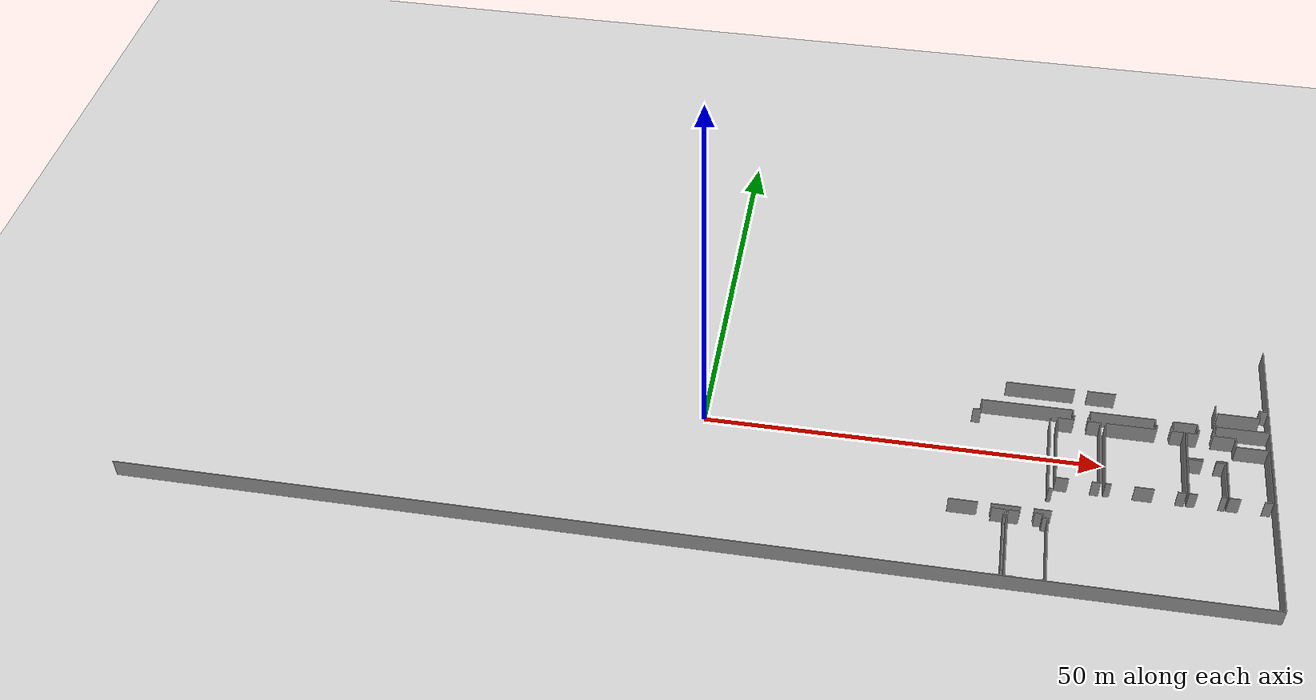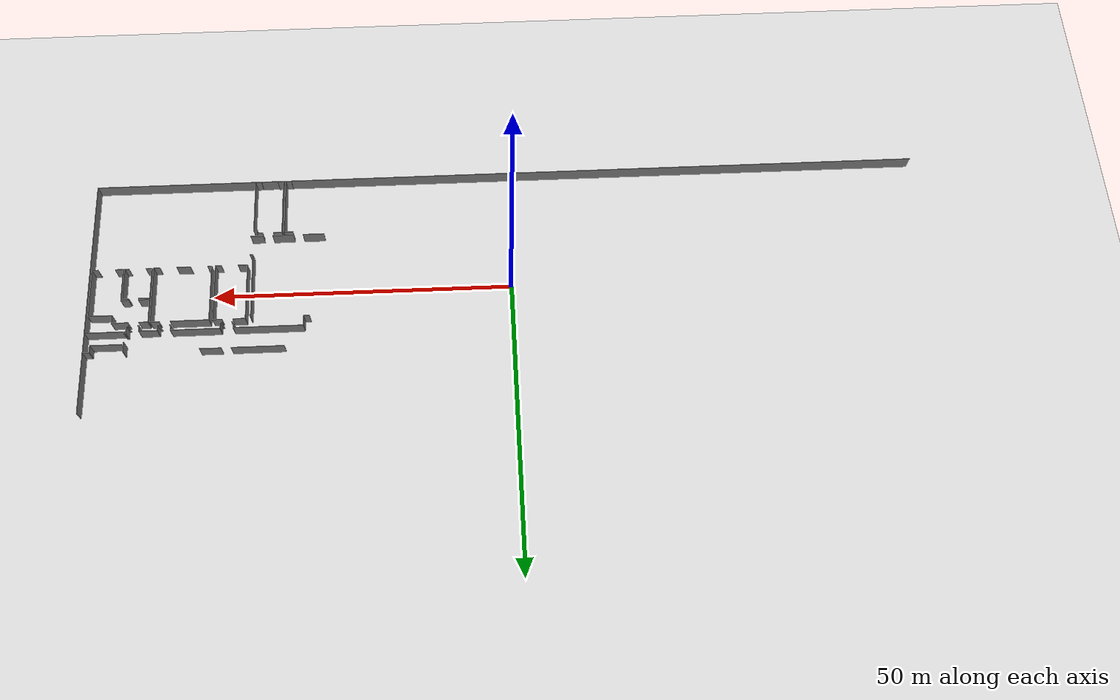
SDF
<sdf version="1.6">
 <world name="default">
  <model name="ground_plane">
   <static>1</static>
   <link name="link">
    <collision name="collision">
     <geometry><plane><normal>0 0 1</normal><size>100 100</size></plane></geometry>
     <surface><friction><ode><mu>100</mu><mu2>50</mu2></ode></friction></surface>
    </collision>
    <visual name="visual">
     <cast_shadows>0</cast_shadows>
     <geometry><plane><normal>0 0 1</normal><size>100 100</size></plane></geometry>
     <material>
      <script><uri>file://media/materials/scripts/gazebo.material</uri><name>Gazebo/Grey</name></script>
     </material>
    </visual>
   </link>
  </model>
  <model name="50055640">
   <static>1</static>
   <link name="Wall_317">
    <collision name="Wall_317_Collision">
     <geometry><box><size>11.6004619524 0.1 2.5</size></box></geometry>
     <pose>5.80023097619 0 1.25 0 0 0</pose>
    </collision>
    <visual name="Wall_317_Visual">
     <pose>5.80023097619 0 1.25 0 0 0</pose>
     <geometry><box><size>11.6004619524 0.1 2.5</size></box></geometry>
     <material>
      <script><uri>file://media/materials/scripts/gazebo.material</uri><name>Gazebo/Grey</name></script>
      <ambient>1 1 1 1</ambient>
     </material>
    </visual>
    <pose>113.734707346 -15.9891872684 0 0 0 -1.57079632679</pose>
   </link>
   <link name="Wall_318">
    <collision name="Wall_318_Collision">
     <geometry><box><size>0.491141682319 0.1 2.5</size></box></geometry>
     <pose>0.245570841159 0 1.25 0 0 0</pose>
    </collision>
    <visual name="Wall_318_Visual">
     <pose>0.245570841159 0 1.25 0 0 0</pose>
     <geometry><box><size>0.491141682319 0.1 2.5</size></box></geometry>
     <material>
      <script><uri>file://media/materials/scripts/gazebo.material</uri><name>Gazebo/Grey</name></script>
      <ambient>1 1 1 1</ambient>
     </material>
    </visual>
    <pose>113.734707346 -27.5896492208 0 0 0 0.0</pose>
   </link>
   <link name="Wall_319">
    <collision name="Wall_319_Collision">
     <geometry><box><size>2.11812782375 0.1 2.5</size></box></geometry>
     <pose>1.05906391187 0 1.25 0 0 0</pose>
    </collision>
    <visual name="Wall_319_Visual">
     <pose>1.05906391187 0 1.25 0 0 0</pose>
     <geometry><box><size>2.11812782375 0.1 2.5</size></box></geometry>
     <material>
      <script><uri>file://media/materials/scripts/gazebo.material</uri><name>Gazebo/Grey</name></script>
      <ambient>1 1 1 1</ambient>
     </material>
    </visual>
    <pose>114.225849028 -31.1251078735 0 0 0 3.14159265359</pose>
   </link>
   <link name="Wall_320">
    <collision name="Wall_320_Collision">
     <geometry><box><size>3.57936951114 0.1 2.5</size></box></geometry>
     <pose>1.78968475557 0 1.25 0 0 0</pose>
    </collision>
    <visual name="Wall_320_Visual">
     <pose>1.78968475557 0 1.25 0 0 0</pose>
     <geometry><box><size>3.57936951114 0.1 2.5</size></box></geometry>
     <material>
      <script><uri>file://media/materials/scripts/gazebo.material</uri><name>Gazebo/Grey</name></script>
      <ambient>1 1 1 1</ambient>
     </material>
    </visual>
    <pose>110.538606021 -31.1251078735 0 0 0 3.14159265359</pose>
   </link>
   <link name="Wall_321">
    <collision name="Wall_321_Collision">
     <geometry><box><size>3.57936951114 0.1 2.5</size></box></geometry>
     <pose>1.78968475557 0 1.25 0 0 0</pose>
    </collision>
    <visual name="Wall_321_Visual">
     <pose>1.78968475557 0 1.25 0 0 0</pose>
     <geometry><box><size>3.57936951114 0.1 2.5</size></box></geometry>
     <material>
      <script><uri>file://media/materials/scripts/gazebo.material</uri><name>Gazebo/Grey</name></script>
      <ambient>1 1 1 1</ambient>
     </material>
    </visual>
    <pose>105.385425656 -31.1251078735 0 0 0 3.14159265359</pose>
   </link>
   <link name="Wall_323">
    <collision name="Wall_323_Collision">
     <geometry><box><size>9.94542870196 0.1 2.5</size></box></geometry>
     <pose>4.97271435098 0 1.25 0 0 0</pose>
    </collision>
    <visual name="Wall_323_Visual">
     <pose>4.97271435098 0 1.25 0 0 0</pose>
     <geometry><box><size>9.94542870196 0.1 2.5</size></box></geometry>
     <material>
      <script><uri>file://media/materials/scripts/gazebo.material</uri><name>Gazebo/Grey</name></script>
      <ambient>1 1 1 1</ambient>
     </material>
    </visual>
    <pose>108.957815118 -41.6880806132 0 0 0 1.57079632679</pose>
   </link>
   <link name="Wall_324">
    <collision name="Wall_324_Collision">
     <geometry><box><size>1.46441443728 0.1 2.5</size></box></geometry>
     <pose>0.732207218641 0 1.25 0 0 0</pose>
    </collision>
    <visual name="Wall_324_Visual">
     <pose>0.732207218641 0 1.25 0 0 0</pose>
     <geometry><box><size>1.46441443728 0.1 2.5</size></box></geometry>
     <material>
      <script><uri>file://media/materials/scripts/gazebo.material</uri><name>Gazebo/Grey</name></script>
      <ambient>1 1 1 1</ambient>
     </material>
    </visual>
    <pose>108.957815118 -31.7426519113 0 0 0 0.0</pose>
   </link>
   <link name="Wall_325">
    <collision name="Wall_325_Collision">
     <geometry><box><size>0.954363165643 0.1 2.5</size></box></geometry>
     <pose>0.477181582821 0 1.25 0 0 0</pose>
    </collision>
    <visual name="Wall_325_Visual">
     <pose>0.477181582821 0 1.25 0 0 0</pose>
     <geometry><box><size>0.954363165643 0.1 2.5</size></box></geometry>
     <material>
      <script><uri>file://media/materials/scripts/gazebo.material</uri><name>Gazebo/Grey</name></script>
      <ambient>1 1 1 1</ambient>
     </material>
    </visual>
    <pose>112.195289101 -31.7426519113 0 0 0 0.0</pose>
   </link>
   <link name="Wall_326">
    <collision name="Wall_326_Collision">
     <geometry><box><size>0.580867049089 0.1 2.5</size></box></geometry>
     <pose>0.290433524544 0 1.25 0 0 0</pose>
    </collision>
    <visual name="Wall_326_Visual">
     <pose>0.290433524544 0 1.25 0 0 0</pose>
     <geometry><box><size>0.580867049089 0.1 2.5</size></box></geometry>
     <material>
      <script><uri>file://media/materials/scripts/gazebo.material</uri><name>Gazebo/Grey</name></script>
      <ambient>1 1 1 1</ambient>
     </material>
    </visual>
    <pose>113.149652267 -31.7426519113 0 0 0 -1.57079632679</pose>
   </link>
   <link name="Wall_327">
    <collision name="Wall_327_Collision">
     <geometry><box><size>0.596476978527 0.1 2.5</size></box></geometry>
     <pose>0.298238489263 0 1.25 0 0 0</pose>
    </collision>
    <visual name="Wall_327_Visual">
     <pose>0.298238489263 0 1.25 0 0 0</pose>
     <geometry><box><size>0.596476978527 0.1 2.5</size></box></geometry>
     <material>
      <script><uri>file://media/materials/scripts/gazebo.material</uri><name>Gazebo/Grey</name></script>
      <ambient>1 1 1 1</ambient>
     </material>
    </visual>
    <pose>113.149652267 -32.3235189604 0 0 0 0.0</pose>
   </link>
   <link name="Wall_328">
    <collision name="Wall_328_Collision">
     <geometry><box><size>9.36684603279 0.1 2.5</size></box></geometry>
     <pose>4.6834230164 0 1.25 0 0 0</pose>
    </collision>
    <visual name="Wall_328_Visual">
     <pose>4.6834230164 0 1.25 0 0 0</pose>
     <geometry><box><size>9.36684603279 0.1 2.5</size></box></geometry>
     <material>
      <script><uri>file://media/materials/scripts/gazebo.material</uri><name>Gazebo/Grey</name></script>
      <ambient>1 1 1 1</ambient>
     </material>
    </visual>
    <pose>113.746129245 -32.3235189604 0 0 0 -1.57079632679</pose>
   </link>
   <link name="Wall_329">
    <collision name="Wall_329_Collision">
     <geometry><box><size>1.00766536372 0.1 2.5</size></box></geometry>
     <pose>0.503832681862 0 1.25 0 0 0</pose>
    </collision>
    <visual name="Wall_329_Visual">
     <pose>0.503832681862 0 1.25 0 0 0</pose>
     <geometry><box><size>1.00766536372 0.1 2.5</size></box></geometry>
     <material>
      <script><uri>file://media/materials/scripts/gazebo.material</uri><name>Gazebo/Grey</name></script>
      <ambient>1 1 1 1</ambient>
     </material>
    </visual>
    <pose>113.746129245 -41.6903649931 0 0 0 3.14159265359</pose>
   </link>
   <link name="Wall_330">
    <collision name="Wall_330_Collision">
     <geometry><box><size>0.965153218659 0.1 2.5</size></box></geometry>
     <pose>0.482576609329 0 1.25 0 0 0</pose>
    </collision>
    <visual name="Wall_330_Visual">
     <pose>0.482576609329 0 1.25 0 0 0</pose>
     <geometry><box><size>0.965153218659 0.1 2.5</size></box></geometry>
     <material>
      <script><uri>file://media/materials/scripts/gazebo.material</uri><name>Gazebo/Grey</name></script>
      <ambient>1 1 1 1</ambient>
     </material>
    </visual>
    <pose>109.922965633 -41.6903649931 0 0 0 3.1392257941</pose>
   </link>
   <link name="Wall_333">
    <collision name="Wall_333_Collision">
     <geometry><box><size>1.49753794609 0.1 2.5</size></box></geometry>
     <pose>0.748768973044 0 1.25 0 0 0</pose>
    </collision>
    <visual name="Wall_333_Visual">
     <pose>0.748768973044 0 1.25 0 0 0</pose>
     <geometry><box><size>1.49753794609 0.1 2.5</size></box></geometry>
     <material>
      <script><uri>file://media/materials/scripts/gazebo.material</uri><name>Gazebo/Grey</name></script>
      <ambient>1 1 1 1</ambient>
     </material>
    </visual>
    <pose>107.066856186 -31.7278034418 0 0 0 0.0</pose>
   </link>
   <link name="Wall_334">
    <collision name="Wall_334_Collision">
     <geometry><box><size>9.9666226712 0.1 2.5</size></box></geometry>
     <pose>4.9833113356 0 1.25 0 0 0</pose>
    </collision>
    <visual name="Wall_334_Visual">
     <pose>4.9833113356 0 1.25 0 0 0</pose>
     <geometry><box><size>9.9666226712 0.1 2.5</size></box></geometry>
     <material>
      <script><uri>file://media/materials/scripts/gazebo.material</uri><name>Gazebo/Grey</name></script>
      <ambient>1 1 1 1</ambient>
     </material>
    </visual>
    <pose>108.564394132 -31.7278034418 0 0 0 -1.57079632679</pose>
   </link>
   <link name="Wall_335">
    <collision name="Wall_335_Collision">
     <geometry><box><size>0.96223158536 0.1 2.5</size></box></geometry>
     <pose>0.48111579268 0 1.25 0 0 0</pose>
    </collision>
    <visual name="Wall_335_Visual">
     <pose>0.48111579268 0 1.25 0 0 0</pose>
     <geometry><box><size>0.96223158536 0.1 2.5</size></box></geometry>
     <material>
      <script><uri>file://media/materials/scripts/gazebo.material</uri><name>Gazebo/Grey</name></script>
      <ambient>1 1 1 1</ambient>
     </material>
    </visual>
    <pose>108.564394132 -41.694426113 0 0 0 3.14159265359</pose>
   </link>
   <link name="Wall_371">
    <collision name="Wall_371_Collision">
     <geometry><box><size>8.71617848622 0.1 2.5</size></box></geometry>
     <pose>4.35808924311 0 1.25 0 0 0</pose>
    </collision>
    <visual name="Wall_371_Visual">
     <pose>4.35808924311 0 1.25 0 0 0</pose>
     <geometry><box><size>8.71617848622 0.1 2.5</size></box></geometry>
     <material>
      <script><uri>file://media/materials/scripts/gazebo.material</uri><name>Gazebo/Grey</name></script>
      <ambient>1 1 1 1</ambient>
     </material>
    </visual>
    <pose>108.005990152 -10.5616274938 0 0 0 0.0</pose>
   </link>
   <link name="Wall_372">
    <collision name="Wall_372_Collision">
     <geometry><box><size>3.55601807198 0.1 2.5</size></box></geometry>
     <pose>1.77800903599 0 1.25 0 0 0</pose>
    </collision>
    <visual name="Wall_372_Visual">
     <pose>1.77800903599 0 1.25 0 0 0</pose>
     <geometry><box><size>3.55601807198 0.1 2.5</size></box></geometry>
     <material>
      <script><uri>file://media/materials/scripts/gazebo.material</uri><name>Gazebo/Grey</name></script>
      <ambient>1 1 1 1</ambient>
     </material>
    </visual>
    <pose>118.311081781 -10.5616274938 0 0 0 0.0</pose>
   </link>
   <link name="Wall_376">
    <collision name="Wall_376_Collision">
     <geometry><box><size>1.35032235139 0.1 2.5</size></box></geometry>
     <pose>0.675161175694 0 1.25 0 0 0</pose>
    </collision>
    <visual name="Wall_376_Visual">
     <pose>0.675161175694 0 1.25 0 0 0</pose>
     <geometry><box><size>1.35032235139 0.1 2.5</size></box></geometry>
     <material>
      <script><uri>file://media/materials/scripts/gazebo.material</uri><name>Gazebo/Grey</name></script>
      <ambient>1 1 1 1</ambient>
     </material>
    </visual>
    <pose>134.087263313 -13.7808264379 0 0 0 -1.57079632679</pose>
   </link>
   <link name="Wall_377">
    <collision name="Wall_377_Collision">
     <geometry><box><size>0.304583989035 0.1 2.5</size></box></geometry>
     <pose>0.152291994517 0 1.25 0 0 0</pose>
    </collision>
    <visual name="Wall_377_Visual">
     <pose>0.152291994517 0 1.25 0 0 0</pose>
     <geometry><box><size>0.304583989035 0.1 2.5</size></box></geometry>
     <material>
      <script><uri>file://media/materials/scripts/gazebo.material</uri><name>Gazebo/Grey</name></script>
      <ambient>1 1 1 1</ambient>
     </material>
    </visual>
    <pose>134.087263313 -15.1311487893 0 0 0 3.14159265359</pose>
   </link>
   <link name="Wall_378">
    <collision name="Wall_378_Collision">
     <geometry><box><size>0.232245291639 0.1 2.5</size></box></geometry>
     <pose>0.11612264582 0 1.25 0 0 0</pose>
    </collision>
    <visual name="Wall_378_Visual">
     <pose>0.11612264582 0 1.25 0 0 0</pose>
     <geometry><box><size>0.232245291639 0.1 2.5</size></box></geometry>
     <material>
      <script><uri>file://media/materials/scripts/gazebo.material</uri><name>Gazebo/Grey</name></script>
      <ambient>1 1 1 1</ambient>
     </material>
    </visual>
    <pose>132.198842581 -15.1311487893 0 0 0 3.14159265359</pose>
   </link>
   <link name="Wall_379">
    <collision name="Wall_379_Collision">
     <geometry><box><size>0.977714604802 0.1 2.5</size></box></geometry>
     <pose>0.488857302401 0 1.25 0 0 0</pose>
    </collision>
    <visual name="Wall_379_Visual">
     <pose>0.488857302401 0 1.25 0 0 0</pose>
     <geometry><box><size>0.977714604802 0.1 2.5</size></box></geometry>
     <material>
      <script><uri>file://media/materials/scripts/gazebo.material</uri><name>Gazebo/Grey</name></script>
      <ambient>1 1 1 1</ambient>
     </material>
    </visual>
    <pose>131.966597289 -15.1311487893 0 0 0 1.57079632679</pose>
   </link>
   <link name="Wall_380">
    <collision name="Wall_380_Collision">
     <geometry><box><size>3.01030509163 0.1 2.5</size></box></geometry>
     <pose>1.50515254581 0 1.25 0 0 0</pose>
    </collision>
    <visual name="Wall_380_Visual">
     <pose>1.50515254581 0 1.25 0 0 0</pose>
     <geometry><box><size>3.01030509163 0.1 2.5</size></box></geometry>
     <material>
      <script><uri>file://media/materials/scripts/gazebo.material</uri><name>Gazebo/Grey</name></script>
      <ambient>1 1 1 1</ambient>
     </material>
    </visual>
    <pose>131.966597289 -14.1534341845 0 0 0 3.14159265359</pose>
   </link>
   <link name="Wall_381">
    <collision name="Wall_381_Collision">
     <geometry><box><size>1.00131986395 0.1 2.5</size></box></geometry>
     <pose>0.500659931976 0 1.25 0 0 0</pose>
    </collision>
    <visual name="Wall_381_Visual">
     <pose>0.500659931976 0 1.25 0 0 0</pose>
     <geometry><box><size>1.00131986395 0.1 2.5</size></box></geometry>
     <material>
      <script><uri>file://media/materials/scripts/gazebo.material</uri><name>Gazebo/Grey</name></script>
      <ambient>1 1 1 1</ambient>
     </material>
    </visual>
    <pose>128.956292198 -14.1534341845 0 0 0 -1.57079632679</pose>
   </link>
   <link name="Wall_382">
    <collision name="Wall_382_Collision">
     <geometry><box><size>0.327427788213 0.1 2.5</size></box></geometry>
     <pose>0.163713894106 0 1.25 0 0 0</pose>
    </collision>
    <visual name="Wall_382_Visual">
     <pose>0.163713894106 0 1.25 0 0 0</pose>
     <geometry><box><size>0.327427788213 0.1 2.5</size></box></geometry>
     <material>
      <script><uri>file://media/materials/scripts/gazebo.material</uri><name>Gazebo/Grey</name></script>
      <ambient>1 1 1 1</ambient>
     </material>
    </visual>
    <pose>128.956292198 -15.1547540484 0 0 0 3.14159265359</pose>
   </link>
   <link name="Wall_383">
    <collision name="Wall_383_Collision">
     <geometry><box><size>0.242398091274 0.1 2.5</size></box></geometry>
     <pose>0.121199045637 0 1.25 0 0 0</pose>
    </collision>
    <visual name="Wall_383_Visual">
     <pose>0.121199045637 0 1.25 0 0 0</pose>
     <geometry><box><size>0.242398091274 0.1 2.5</size></box></geometry>
     <material>
      <script><uri>file://media/materials/scripts/gazebo.material</uri><name>Gazebo/Grey</name></script>
      <ambient>1 1 1 1</ambient>
     </material>
    </visual>
    <pose>127.065333266 -15.1547540484 0 0 0 3.14159265359</pose>
   </link>
   <link name="Wall_384">
    <collision name="Wall_384_Collision">
     <geometry><box><size>1.02898624296 0.1 2.5</size></box></geometry>
     <pose>0.514493121478 0 1.25 0 0 0</pose>
    </collision>
    <visual name="Wall_384_Visual">
     <pose>0.514493121478 0 1.25 0 0 0</pose>
     <geometry><box><size>1.02898624296 0.1 2.5</size></box></geometry>
     <material>
      <script><uri>file://media/materials/scripts/gazebo.material</uri><name>Gazebo/Grey</name></script>
      <ambient>1 1 1 1</ambient>
     </material>
    </visual>
    <pose>126.822935174 -15.1547540484 0 0 0 1.57079632679</pose>
   </link>
   <link name="Wall_385">
    <collision name="Wall_385_Collision">
     <geometry><box><size>8.15523630641 0.1 2.5</size></box></geometry>
     <pose>4.07761815321 0 1.25 0 0 0</pose>
    </collision>
    <visual name="Wall_385_Visual">
     <pose>4.07761815321 0 1.25 0 0 0</pose>
     <geometry><box><size>8.15523630641 0.1 2.5</size></box></geometry>
     <material>
      <script><uri>file://media/materials/scripts/gazebo.material</uri><name>Gazebo/Grey</name></script>
      <ambient>1 1 1 1</ambient>
     </material>
    </visual>
    <pose>126.822935174 -14.1257678055 0 0 0 3.14159265359</pose>
   </link>
   <link name="Wall_386">
    <collision name="Wall_386_Collision">
     <geometry><box><size>1.02632113305 0.1 2.5</size></box></geometry>
     <pose>0.513160566526 0 1.25 0 0 0</pose>
    </collision>
    <visual name="Wall_386_Visual">
     <pose>0.513160566526 0 1.25 0 0 0</pose>
     <geometry><box><size>1.02632113305 0.1 2.5</size></box></geometry>
     <material>
      <script><uri>file://media/materials/scripts/gazebo.material</uri><name>Gazebo/Grey</name></script>
      <ambient>1 1 1 1</ambient>
     </material>
    </visual>
    <pose>118.667698868 -14.1257678055 0 0 0 -1.57079632679</pose>
   </link>
   <link name="Wall_387">
    <collision name="Wall_387_Collision">
     <geometry><box><size>0.309660388852 0.1 2.5</size></box></geometry>
     <pose>0.154830194426 0 1.25 0 0 0</pose>
    </collision>
    <visual name="Wall_387_Visual">
     <pose>0.154830194426 0 1.25 0 0 0</pose>
     <geometry><box><size>0.309660388852 0.1 2.5</size></box></geometry>
     <material>
      <script><uri>file://media/materials/scripts/gazebo.material</uri><name>Gazebo/Grey</name></script>
      <ambient>1 1 1 1</ambient>
     </material>
    </visual>
    <pose>118.667698868 -15.1520889385 0 0 0 3.14159265359</pose>
   </link>
   <link name="Wall_388">
    <collision name="Wall_388_Collision">
     <geometry><box><size>0.262703690543 0.1 2.5</size></box></geometry>
     <pose>0.131351845271 0 1.25 0 0 0</pose>
    </collision>
    <visual name="Wall_388_Visual">
     <pose>0.131351845271 0 1.25 0 0 0</pose>
     <geometry><box><size>0.262703690543 0.1 2.5</size></box></geometry>
     <material>
      <script><uri>file://media/materials/scripts/gazebo.material</uri><name>Gazebo/Grey</name></script>
      <ambient>1 1 1 1</ambient>
     </material>
    </visual>
    <pose>116.780547236 -15.1520889385 0 0 0 3.14159265359</pose>
   </link>
   <link name="Wall_389">
    <collision name="Wall_389_Collision">
     <geometry><box><size>1.00411188385 0.1 2.5</size></box></geometry>
     <pose>0.502055941926 0 1.25 0 0 0</pose>
    </collision>
    <visual name="Wall_389_Visual">
     <pose>0.502055941926 0 1.25 0 0 0</pose>
     <geometry><box><size>1.00411188385 0.1 2.5</size></box></geometry>
     <material>
      <script><uri>file://media/materials/scripts/gazebo.material</uri><name>Gazebo/Grey</name></script>
      <ambient>1 1 1 1</ambient>
     </material>
    </visual>
    <pose>116.517843545 -15.1520889385 0 0 0 1.57079632679</pose>
   </link>
   <link name="Wall_390">
    <collision name="Wall_390_Collision">
     <geometry><box><size>11.5151784355 0.1 2.5</size></box></geometry>
     <pose>5.75758921773 0 1.25 0 0 0</pose>
    </collision>
    <visual name="Wall_390_Visual">
     <pose>5.75758921773 0 1.25 0 0 0</pose>
     <geometry><box><size>11.5151784355 0.1 2.5</size></box></geometry>
     <material>
      <script><uri>file://media/materials/scripts/gazebo.material</uri><name>Gazebo/Grey</name></script>
      <ambient>1 1 1 1</ambient>
     </material>
    </visual>
    <pose>116.517843545 -14.1479770547 0 0 0 3.14159265359</pose>
   </link>
   <link name="Wall_391">
    <collision name="Wall_391_Collision">
     <geometry><box><size>1.73244834763 0.1 2.5</size></box></geometry>
     <pose>0.866224173816 0 1.25 0 0 0</pose>
    </collision>
    <visual name="Wall_391_Visual">
     <pose>0.866224173816 0 1.25 0 0 0</pose>
     <geometry><box><size>1.73244834763 0.1 2.5</size></box></geometry>
     <material>
      <script><uri>file://media/materials/scripts/gazebo.material</uri><name>Gazebo/Grey</name></script>
      <ambient>1 1 1 1</ambient>
     </material>
    </visual>
    <pose>105.00266511 -14.1479770547 0 0 0 -1.57079632679</pose>
   </link>
   <link name="Wall_392">
    <collision name="Wall_392_Collision">
     <geometry><box><size>1.00791918371 0.1 2.5</size></box></geometry>
     <pose>0.503959591857 0 1.25 0 0 0</pose>
    </collision>
    <visual name="Wall_392_Visual">
     <pose>0.503959591857 0 1.25 0 0 0</pose>
     <geometry><box><size>1.00791918371 0.1 2.5</size></box></geometry>
     <material>
      <script><uri>file://media/materials/scripts/gazebo.material</uri><name>Gazebo/Grey</name></script>
      <ambient>1 1 1 1</ambient>
     </material>
    </visual>
    <pose>105.00266511 -15.8804254023 0 0 0 3.14159265359</pose>
   </link>
   <link name="Wall_471">
    <collision name="Wall_471_Collision">
     <geometry><box><size>0.317148078583 0.1 2.5</size></box></geometry>
     <pose>0.158574039291 0 1.25 0 0 0</pose>
    </collision>
    <visual name="Wall_471_Visual">
     <pose>0.158574039291 0 1.25 0 0 0</pose>
     <geometry><box><size>0.317148078583 0.1 2.5</size></box></geometry>
     <material>
      <script><uri>file://media/materials/scripts/gazebo.material</uri><name>Gazebo/Grey</name></script>
      <ambient>1 1 1 1</ambient>
     </material>
    </visual>
    <pose>134.337276004 -14.1440428448 0 0 0 1.57079632679</pose>
   </link>
   <link name="Wall_472">
    <collision name="Wall_472_Collision">
     <geometry><box><size>1.73257525763 0.1 2.5</size></box></geometry>
     <pose>0.866287628814 0 1.25 0 0 0</pose>
    </collision>
    <visual name="Wall_472_Visual">
     <pose>0.866287628814 0 1.25 0 0 0</pose>
     <geometry><box><size>1.73257525763 0.1 2.5</size></box></geometry>
     <material>
      <script><uri>file://media/materials/scripts/gazebo.material</uri><name>Gazebo/Grey</name></script>
      <ambient>1 1 1 1</ambient>
     </material>
    </visual>
    <pose>134.337276004 -12.2938220214 0 0 0 1.57079632679</pose>
   </link>
   <link name="Wall_475">
    <collision name="Wall_475_Collision">
     <geometry><box><size>5.18173511346 0.1 2.5</size></box></geometry>
     <pose>2.59086755673 0 1.25 0 0 0</pose>
    </collision>
    <visual name="Wall_475_Visual">
     <pose>2.59086755673 0 1.25 0 0 0</pose>
     <geometry><box><size>5.18173511346 0.1 2.5</size></box></geometry>
     <material>
      <script><uri>file://media/materials/scripts/gazebo.material</uri><name>Gazebo/Grey</name></script>
      <ambient>1 1 1 1</ambient>
     </material>
    </visual>
    <pose>134.587288695 -11.8476064775 0 0 0 0.0</pose>
   </link>
   <link name="Wall_476">
    <collision name="Wall_476_Collision">
     <geometry><box><size>1.2666886644 0.1 2.5</size></box></geometry>
     <pose>0.6333443322 0 1.25 0 0 0</pose>
    </collision>
    <visual name="Wall_476_Visual">
     <pose>0.6333443322 0 1.25 0 0 0</pose>
     <geometry><box><size>1.2666886644 0.1 2.5</size></box></geometry>
     <material>
      <script><uri>file://media/materials/scripts/gazebo.material</uri><name>Gazebo/Grey</name></script>
      <ambient>1 1 1 1</ambient>
     </material>
    </visual>
    <pose>139.769023808 -11.8476064775 0 0 0 1.57079632679</pose>
   </link>
   <link name="Wall_477">
    <collision name="Wall_477_Collision">
     <geometry><box><size>1.11300065993 0.1 2.5</size></box></geometry>
     <pose>0.556500329966 0 1.25 0 0 0</pose>
    </collision>
    <visual name="Wall_477_Visual">
     <pose>0.556500329966 0 1.25 0 0 0</pose>
     <geometry><box><size>1.11300065993 0.1 2.5</size></box></geometry>
     <material>
      <script><uri>file://media/materials/scripts/gazebo.material</uri><name>Gazebo/Grey</name></script>
      <ambient>1 1 1 1</ambient>
     </material>
    </visual>
    <pose>139.769023808 -10.5809178131 0 0 0 0.0</pose>
   </link>
   <link name="Wall_478">
    <collision name="Wall_478_Collision">
     <geometry><box><size>6.5447967033 0.1 2.5</size></box></geometry>
     <pose>3.27239835165 0 1.25 0 0 0</pose>
    </collision>
    <visual name="Wall_478_Visual">
     <pose>3.27239835165 0 1.25 0 0 0</pose>
     <geometry><box><size>6.5447967033 0.1 2.5</size></box></geometry>
     <material>
      <script><uri>file://media/materials/scripts/gazebo.material</uri><name>Gazebo/Grey</name></script>
      <ambient>1 1 1 1</ambient>
     </material>
    </visual>
    <pose>140.882024468 -14.1189146657 0 0 0 -3.13775323092</pose>
   </link>
   <link name="Wall_479">
    <collision name="Wall_479_Collision">
     <geometry><box><size>4.17356210975 0.1 2.5</size></box></geometry>
     <pose>2.08678105488 0 1.25 0 0 0</pose>
    </collision>
    <visual name="Wall_479_Visual">
     <pose>2.08678105488 0 1.25 0 0 0</pose>
     <geometry><box><size>4.17356210975 0.1 2.5</size></box></geometry>
     <material>
      <script><uri>file://media/materials/scripts/gazebo.material</uri><name>Gazebo/Grey</name></script>
      <ambient>1 1 1 1</ambient>
     </material>
    </visual>
    <pose>130.570587339 -19.9293618965 0 0 0 1.57079632679</pose>
   </link>
   <link name="Wall_480">
    <collision name="Wall_480_Collision">
     <geometry><box><size>1.50895984568 0.1 2.5</size></box></geometry>
     <pose>0.754479922839 0 1.25 0 0 0</pose>
    </collision>
    <visual name="Wall_480_Visual">
     <pose>0.754479922839 0 1.25 0 0 0</pose>
     <geometry><box><size>1.50895984568 0.1 2.5</size></box></geometry>
     <material>
      <script><uri>file://media/materials/scripts/gazebo.material</uri><name>Gazebo/Grey</name></script>
      <ambient>1 1 1 1</ambient>
     </material>
    </visual>
    <pose>130.570587339 -15.7557997868 0 0 0 0.0</pose>
   </link>
   <link name="Wall_481">
    <collision name="Wall_481_Collision">
     <geometry><box><size>2.74379410122 0.1 2.5</size></box></geometry>
     <pose>1.37189705061 0 1.25 0 0 0</pose>
    </collision>
    <visual name="Wall_481_Visual">
     <pose>1.37189705061 0 1.25 0 0 0</pose>
     <geometry><box><size>2.74379410122 0.1 2.5</size></box></geometry>
     <material>
      <script><uri>file://media/materials/scripts/gazebo.material</uri><name>Gazebo/Grey</name></script>
      <ambient>1 1 1 1</ambient>
     </material>
    </visual>
    <pose>133.841057922 -15.7557997868 0 0 0 0.0</pose>
   </link>
   <link name="Wall_482">
    <collision name="Wall_482_Collision">
     <geometry><box><size>1.4278643586 0.1 2.5</size></box></geometry>
     <pose>0.713932179298 0 1.25 0 0 0</pose>
    </collision>
    <visual name="Wall_482_Visual">
     <pose>0.713932179298 0 1.25 0 0 0</pose>
     <geometry><box><size>1.4278643586 0.1 2.5</size></box></geometry>
     <material>
      <script><uri>file://media/materials/scripts/gazebo.material</uri><name>Gazebo/Grey</name></script>
      <ambient>1 1 1 1</ambient>
     </material>
    </visual>
    <pose>136.584852023 -15.7557997868 0 0 0 -1.57079632679</pose>
   </link>
   <link name="Wall_483">
    <collision name="Wall_483_Collision">
     <geometry><box><size>3.95578455759 0.1 2.5</size></box></geometry>
     <pose>1.9778922788 0 1.25 0 0 0</pose>
    </collision>
    <visual name="Wall_483_Visual">
     <pose>1.9778922788 0 1.25 0 0 0</pose>
     <geometry><box><size>3.95578455759 0.1 2.5</size></box></geometry>
     <material>
      <script><uri>file://media/materials/scripts/gazebo.material</uri><name>Gazebo/Grey</name></script>
      <ambient>1 1 1 1</ambient>
     </material>
    </visual>
    <pose>136.584852023 -17.1836641454 0 0 0 0.0</pose>
   </link>
   <link name="Wall_484">
    <collision name="Wall_484_Collision">
     <geometry><box><size>8.51426468349 0.1 2.5</size></box></geometry>
     <pose>4.25713234174 0 1.25 0 0 0</pose>
    </collision>
    <visual name="Wall_484_Visual">
     <pose>4.25713234174 0 1.25 0 0 0</pose>
     <geometry><box><size>8.51426468349 0.1 2.5</size></box></geometry>
     <material>
      <script><uri>file://media/materials/scripts/gazebo.material</uri><name>Gazebo/Grey</name></script>
      <ambient>1 1 1 1</ambient>
     </material>
    </visual>
    <pose>140.540636581 -17.1836641454 0 0 0 -1.57079632679</pose>
   </link>
   <link name="Wall_485">
    <collision name="Wall_485_Collision">
     <geometry><box><size>1.02035636327 0.1 2.5</size></box></geometry>
     <pose>0.510178181634 0 1.25 0 0 0</pose>
    </collision>
    <visual name="Wall_485_Visual">
     <pose>0.510178181634 0 1.25 0 0 0</pose>
     <geometry><box><size>1.02035636327 0.1 2.5</size></box></geometry>
     <material>
      <script><uri>file://media/materials/scripts/gazebo.material</uri><name>Gazebo/Grey</name></script>
      <ambient>1 1 1 1</ambient>
     </material>
    </visual>
    <pose>140.540636581 -25.6979288289 0 0 0 3.14159265359</pose>
   </link>
   <link name="Wall_486">
    <collision name="Wall_486_Collision">
     <geometry><box><size>1.37824255038 0.1 2.5</size></box></geometry>
     <pose>0.689121275192 0 1.25 0 0 0</pose>
    </collision>
    <visual name="Wall_486_Visual">
     <pose>0.689121275192 0 1.25 0 0 0</pose>
     <geometry><box><size>1.37824255038 0.1 2.5</size></box></geometry>
     <material>
      <script><uri>file://media/materials/scripts/gazebo.material</uri><name>Gazebo/Grey</name></script>
      <ambient>1 1 1 1</ambient>
     </material>
    </visual>
    <pose>136.719376618 -25.6979288289 0 0 0 3.14159265359</pose>
   </link>
   <link name="Wall_487">
    <collision name="Wall_487_Collision">
     <geometry><box><size>5.78316158181 0.1 2.5</size></box></geometry>
     <pose>2.8915807909 0 1.25 0 0 0</pose>
    </collision>
    <visual name="Wall_487_Visual">
     <pose>2.8915807909 0 1.25 0 0 0</pose>
     <geometry><box><size>5.78316158181 0.1 2.5</size></box></geometry>
     <material>
      <script><uri>file://media/materials/scripts/gazebo.material</uri><name>Gazebo/Grey</name></script>
      <ambient>1 1 1 1</ambient>
     </material>
    </visual>
    <pose>135.341134068 -25.6979288289 0 0 0 1.57079632679</pose>
   </link>
   <link name="Wall_488">
    <collision name="Wall_488_Collision">
     <geometry><box><size>1.32113305244 0.1 2.5</size></box></geometry>
     <pose>0.66056652622 0 1.25 0 0 0</pose>
    </collision>
    <visual name="Wall_488_Visual">
     <pose>0.66056652622 0 1.25 0 0 0</pose>
     <geometry><box><size>1.32113305244 0.1 2.5</size></box></geometry>
     <material>
      <script><uri>file://media/materials/scripts/gazebo.material</uri><name>Gazebo/Grey</name></script>
      <ambient>1 1 1 1</ambient>
     </material>
    </visual>
    <pose>135.341134068 -19.9147672471 0 0 0 3.14159265359</pose>
   </link>
   <link name="Wall_489">
    <collision name="Wall_489_Collision">
     <geometry><box><size>1.87324838755 0.1 2.5</size></box></geometry>
     <pose>0.936624193776 0 1.25 0 0 0</pose>
    </collision>
    <visual name="Wall_489_Visual">
     <pose>0.936624193776 0 1.25 0 0 0</pose>
     <geometry><box><size>1.87324838755 0.1 2.5</size></box></geometry>
     <material>
      <script><uri>file://media/materials/scripts/gazebo.material</uri><name>Gazebo/Grey</name></script>
      <ambient>1 1 1 1</ambient>
     </material>
    </visual>
    <pose>132.443778872 -19.9147672471 0 0 0 -3.13380148333</pose>
   </link>
   <link name="Wall_490">
    <collision name="Wall_490_Collision">
     <geometry><box><size>5.58086704909 0.1 2.5</size></box></geometry>
     <pose>2.79043352454 0 1.25 0 0 0</pose>
    </collision>
    <visual name="Wall_490_Visual">
     <pose>2.79043352454 0 1.25 0 0 0</pose>
     <geometry><box><size>5.58086704909 0.1 2.5</size></box></geometry>
     <material>
      <script><uri>file://media/materials/scripts/gazebo.material</uri><name>Gazebo/Grey</name></script>
      <ambient>1 1 1 1</ambient>
     </material>
    </visual>
    <pose>130.55789634 -25.7291486878 0 0 0 1.57079632679</pose>
   </link>
   <link name="Wall_491">
    <collision name="Wall_491_Collision">
     <geometry><box><size>1.88842073202 0.1 2.5</size></box></geometry>
     <pose>0.944210366008 0 1.25 0 0 0</pose>
    </collision>
    <visual name="Wall_491_Visual">
     <pose>0.944210366008 0 1.25 0 0 0</pose>
     <geometry><box><size>1.88842073202 0.1 2.5</size></box></geometry>
     <material>
      <script><uri>file://media/materials/scripts/gazebo.material</uri><name>Gazebo/Grey</name></script>
      <ambient>1 1 1 1</ambient>
     </material>
    </visual>
    <pose>130.55789634 -20.1482816387 0 0 0 0.0</pose>
   </link>
   <link name="Wall_492">
    <collision name="Wall_492_Collision">
     <geometry><box><size>1.08381136098 0.1 2.5</size></box></geometry>
     <pose>0.541905680491 0 1.25 0 0 0</pose>
    </collision>
    <visual name="Wall_492_Visual">
     <pose>0.541905680491 0 1.25 0 0 0</pose>
     <geometry><box><size>1.08381136098 0.1 2.5</size></box></geometry>
     <material>
      <script><uri>file://media/materials/scripts/gazebo.material</uri><name>Gazebo/Grey</name></script>
      <ambient>1 1 1 1</ambient>
     </material>
    </visual>
    <pose>134.011117316 -20.1482816387 0 0 0 0.0</pose>
   </link>
   <link name="Wall_493">
    <collision name="Wall_493_Collision">
     <geometry><box><size>5.55383522006 0.1 2.5</size></box></geometry>
     <pose>2.77691761003 0 1.25 0 0 0</pose>
    </collision>
    <visual name="Wall_493_Visual">
     <pose>2.77691761003 0 1.25 0 0 0</pose>
     <geometry><box><size>5.55383522006 0.1 2.5</size></box></geometry>
     <material>
      <script><uri>file://media/materials/scripts/gazebo.material</uri><name>Gazebo/Grey</name></script>
      <ambient>1 1 1 1</ambient>
     </material>
    </visual>
    <pose>135.094928677 -20.1482816387 0 0 0 -1.57079632679</pose>
   </link>
   <link name="Wall_494">
    <collision name="Wall_494_Collision">
     <geometry><box><size>0.715772374232 0.1 2.5</size></box></geometry>
     <pose>0.357886187116 0 1.25 0 0 0</pose>
    </collision>
    <visual name="Wall_494_Visual">
     <pose>0.357886187116 0 1.25 0 0 0</pose>
     <geometry><box><size>0.715772374232 0.1 2.5</size></box></geometry>
     <material>
      <script><uri>file://media/materials/scripts/gazebo.material</uri><name>Gazebo/Grey</name></script>
      <ambient>1 1 1 1</ambient>
     </material>
    </visual>
    <pose>135.094928677 -25.7021168587 0 0 0 3.14159265359</pose>
   </link>
   <link name="Wall_495">
    <collision name="Wall_495_Collision">
     <geometry><box><size>1.0181770639 0.1 2.5</size></box></geometry>
     <pose>0.509088531948 0 1.25 0 0 0</pose>
    </collision>
    <visual name="Wall_495_Visual">
     <pose>0.509088531948 0 1.25 0 0 0</pose>
     <geometry><box><size>1.0181770639 0.1 2.5</size></box></geometry>
     <material>
      <script><uri>file://media/materials/scripts/gazebo.material</uri><name>Gazebo/Grey</name></script>
      <ambient>1 1 1 1</ambient>
     </material>
    </visual>
    <pose>131.575714503 -25.7021168587 0 0 0 -3.11504029191</pose>
   </link>
   <link name="Wall_496">
    <collision name="Wall_496_Collision">
     <geometry><box><size>9.98908574039 0.1 2.5</size></box></geometry>
     <pose>4.9945428702 0 1.25 0 0 0</pose>
    </collision>
    <visual name="Wall_496_Visual">
     <pose>4.9945428702 0 1.25 0 0 0</pose>
     <geometry><box><size>9.98908574039 0.1 2.5</size></box></geometry>
     <material>
      <script><uri>file://media/materials/scripts/gazebo.material</uri><name>Gazebo/Grey</name></script>
      <ambient>1 1 1 1</ambient>
     </material>
    </visual>
    <pose>120.5662724 -25.7352403675 0 0 0 1.57079632679</pose>
   </link>
   <link name="Wall_497">
    <collision name="Wall_497_Collision">
     <geometry><box><size>6.37849637037 0.1 2.5</size></box></geometry>
     <pose>3.18924818519 0 1.25 0 0 0</pose>
    </collision>
    <visual name="Wall_497_Visual">
     <pose>3.18924818519 0 1.25 0 0 0</pose>
     <geometry><box><size>6.37849637037 0.1 2.5</size></box></geometry>
     <material>
      <script><uri>file://media/materials/scripts/gazebo.material</uri><name>Gazebo/Grey</name></script>
      <ambient>1 1 1 1</ambient>
     </material>
    </visual>
    <pose>120.5662724 -15.7461546271 0 0 0 0.0</pose>
   </link>
   <link name="Wall_498">
    <collision name="Wall_498_Collision">
     <geometry><box><size>1.53180364486 0.1 2.5</size></box></geometry>
     <pose>0.765901822428 0 1.25 0 0 0</pose>
    </collision>
    <visual name="Wall_498_Visual">
     <pose>0.765901822428 0 1.25 0 0 0</pose>
     <geometry><box><size>1.53180364486 0.1 2.5</size></box></geometry>
     <material>
      <script><uri>file://media/materials/scripts/gazebo.material</uri><name>Gazebo/Grey</name></script>
      <ambient>1 1 1 1</ambient>
     </material>
    </visual>
    <pose>128.718970506 -15.7461546271 0 0 0 0.0</pose>
   </link>
   <link name="Wall_499">
    <collision name="Wall_499_Collision">
     <geometry><box><size>9.98299406061 0.1 2.5</size></box></geometry>
     <pose>4.99149703031 0 1.25 0 0 0</pose>
    </collision>
    <visual name="Wall_499_Visual">
     <pose>4.99149703031 0 1.25 0 0 0</pose>
     <geometry><box><size>9.98299406061 0.1 2.5</size></box></geometry>
     <material>
      <script><uri>file://media/materials/scripts/gazebo.material</uri><name>Gazebo/Grey</name></script>
      <ambient>1 1 1 1</ambient>
     </material>
    </visual>
    <pose>130.250774151 -15.7461546271 0 0 0 -1.57079632679</pose>
   </link>
   <link name="Wall_500">
    <collision name="Wall_500_Collision">
     <geometry><box><size>1.02543276308 0.1 2.5</size></box></geometry>
     <pose>0.512716381542 0 1.25 0 0 0</pose>
    </collision>
    <visual name="Wall_500_Visual">
     <pose>0.512716381542 0 1.25 0 0 0</pose>
     <geometry><box><size>1.02543276308 0.1 2.5</size></box></geometry>
     <material>
      <script><uri>file://media/materials/scripts/gazebo.material</uri><name>Gazebo/Grey</name></script>
      <ambient>1 1 1 1</ambient>
     </material>
    </visual>
    <pose>130.250774151 -25.7291486878 0 0 0 3.14159265359</pose>
   </link>
   <link name="Wall_501">
    <collision name="Wall_501_Collision">
     <geometry><box><size>2.3529113153 0.1 2.5</size></box></geometry>
     <pose>1.17645565765 0 1.25 0 0 0</pose>
    </collision>
    <visual name="Wall_501_Visual">
     <pose>1.17645565765 0 1.25 0 0 0</pose>
     <geometry><box><size>2.3529113153 0.1 2.5</size></box></geometry>
     <material>
      <script><uri>file://media/materials/scripts/gazebo.material</uri><name>Gazebo/Grey</name></script>
      <ambient>1 1 1 1</ambient>
     </material>
    </visual>
    <pose>126.438397888 -25.7291486878 0 0 0 3.14159265359</pose>
   </link>
   <link name="Wall_502">
    <collision name="Wall_502_Collision">
     <geometry><box><size>0.710722081135 0.1 2.5</size></box></geometry>
     <pose>0.355361040567 0 1.25 0 0 0</pose>
    </collision>
    <visual name="Wall_502_Visual">
     <pose>0.355361040567 0 1.25 0 0 0</pose>
     <geometry><box><size>0.710722081135 0.1 2.5</size></box></geometry>
     <material>
      <script><uri>file://media/materials/scripts/gazebo.material</uri><name>Gazebo/Grey</name></script>
      <ambient>1 1 1 1</ambient>
     </material>
    </visual>
    <pose>121.276968374 -25.7291486878 0 0 0 -3.13302143492</pose>
   </link>
   <link name="Wall_503">
    <collision name="Wall_503_Collision">
     <geometry><box><size>9.95215493172 0.1 2.5</size></box></geometry>
     <pose>4.97607746586 0 1.25 0 0 0</pose>
    </collision>
    <visual name="Wall_503_Visual">
     <pose>4.97607746586 0 1.25 0 0 0</pose>
     <geometry><box><size>9.95215493172 0.1 2.5</size></box></geometry>
     <material>
      <script><uri>file://media/materials/scripts/gazebo.material</uri><name>Gazebo/Grey</name></script>
      <ambient>1 1 1 1</ambient>
     </material>
    </visual>
    <pose>114.585004315 -25.7055434286 0 0 0 1.57079632679</pose>
   </link>
   <link name="Wall_504">
    <collision name="Wall_504_Collision">
     <geometry><box><size>2.07878572516 0.1 2.5</size></box></geometry>
     <pose>1.03939286258 0 1.25 0 0 0</pose>
    </collision>
    <visual name="Wall_504_Visual">
     <pose>1.03939286258 0 1.25 0 0 0</pose>
     <geometry><box><size>2.07878572516 0.1 2.5</size></box></geometry>
     <material>
      <script><uri>file://media/materials/scripts/gazebo.material</uri><name>Gazebo/Grey</name></script>
      <ambient>1 1 1 1</ambient>
     </material>
    </visual>
    <pose>114.585004315 -15.7533884969 0 0 0 0.0</pose>
   </link>
   <link name="Wall_505">
    <collision name="Wall_505_Collision">
     <geometry><box><size>1.54830194426 0.1 2.5</size></box></geometry>
     <pose>0.774150972131 0 1.25 0 0 0</pose>
    </collision>
    <visual name="Wall_505_Visual">
     <pose>0.774150972131 0 1.25 0 0 0</pose>
     <geometry><box><size>1.54830194426 0.1 2.5</size></box></geometry>
     <material>
      <script><uri>file://media/materials/scripts/gazebo.material</uri><name>Gazebo/Grey</name></script>
      <ambient>1 1 1 1</ambient>
     </material>
    </visual>
    <pose>118.412609777 -15.7533884969 0 0 0 0.0</pose>
   </link>
   <link name="Wall_506">
    <collision name="Wall_506_Collision">
     <geometry><box><size>9.98185187065 0.1 2.5</size></box></geometry>
     <pose>4.99092593533 0 1.25 0 0 0</pose>
    </collision>
    <visual name="Wall_506_Visual">
     <pose>4.99092593533 0 1.25 0 0 0</pose>
     <geometry><box><size>9.98185187065 0.1 2.5</size></box></geometry>
     <material>
      <script><uri>file://media/materials/scripts/gazebo.material</uri><name>Gazebo/Grey</name></script>
      <ambient>1 1 1 1</ambient>
     </material>
    </visual>
    <pose>119.960911721 -15.7533884969 0 0 0 -1.57079632679</pose>
   </link>
   <link name="Wall_507">
    <collision name="Wall_507_Collision">
     <geometry><box><size>1.02797096299 0.1 2.5</size></box></geometry>
     <pose>0.513985481497 0 1.25 0 0 0</pose>
    </collision>
    <visual name="Wall_507_Visual">
     <pose>0.513985481497 0 1.25 0 0 0</pose>
     <geometry><box><size>1.02797096299 0.1 2.5</size></box></geometry>
     <material>
      <script><uri>file://media/materials/scripts/gazebo.material</uri><name>Gazebo/Grey</name></script>
      <ambient>1 1 1 1</ambient>
     </material>
    </visual>
    <pose>119.960911721 -25.7352403675 0 0 0 3.14159265359</pose>
   </link>
   <link name="Wall_508">
    <collision name="Wall_508_Collision">
     <geometry><box><size>1.56381314278 0.1 2.5</size></box></geometry>
     <pose>0.781906571392 0 1.25 0 0 0</pose>
    </collision>
    <visual name="Wall_508_Visual">
     <pose>0.781906571392 0 1.25 0 0 0</pose>
     <geometry><box><size>1.56381314278 0.1 2.5</size></box></geometry>
     <material>
      <script><uri>file://media/materials/scripts/gazebo.material</uri><name>Gazebo/Grey</name></script>
      <ambient>1 1 1 1</ambient>
     </material>
    </visual>
    <pose>116.148535459 -25.7352403675 0 0 0 3.12260143059</pose>
   </link>
   <link name="Wall_509">
    <collision name="Wall_509_Collision">
     <geometry><box><size>41.7477283111 0.1 2.5</size></box></geometry>
     <pose>20.8738641555 0 1.25 0 0 0</pose>
    </collision>
    <visual name="Wall_509_Visual">
     <pose>20.8738641555 0 1.25 0 0 0</pose>
     <geometry><box><size>41.7477283111 0.1 2.5</size></box></geometry>
     <material>
      <script><uri>file://media/materials/scripts/gazebo.material</uri><name>Gazebo/Grey</name></script>
      <ambient>1 1 1 1</ambient>
     </material>
    </visual>
    <pose>140.882024468 -41.7477283111 0 0 0 1.57079632679</pose>
   </link>
   <link name="Wall_510">
    <collision name="Wall_510_Collision">
     <geometry><box><size>140.882024468 0.1 2.5</size></box></geometry>
     <pose>70.4410122341 0 1.25 0 0 0</pose>
    </collision>
    <visual name="Wall_510_Visual">
     <pose>70.4410122341 0 1.25 0 0 0</pose>
     <geometry><box><size>140.882024468 0.1 2.5</size></box></geometry>
     <material>
      <script><uri>file://media/materials/scripts/gazebo.material</uri><name>Gazebo/Grey</name></script>
      <ambient>1 1 1 1</ambient>
     </material>
    </visual>
    <pose>140.882024468 -41.7477283111 0 0 0 3.14159265359</pose>
   </link>
   <pose>-70.4 20.8977283111 0 0 0 0</pose>
  </model>
 </world>
</sdf>
